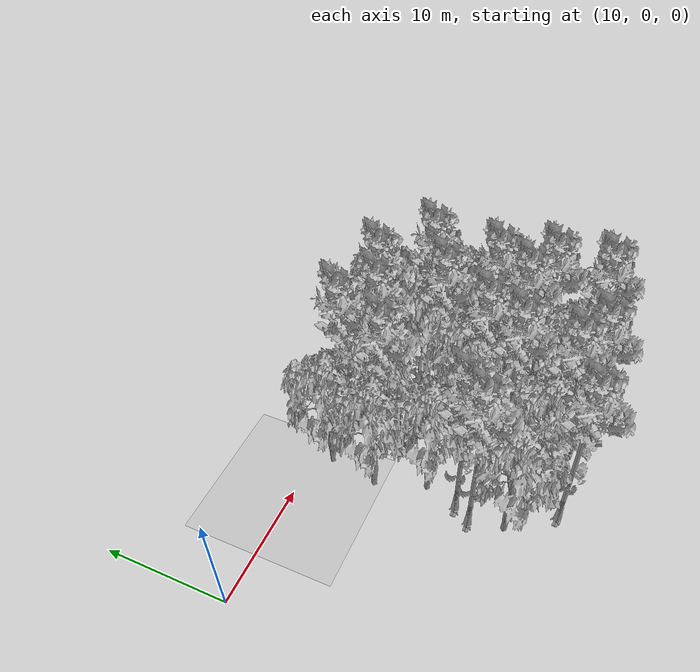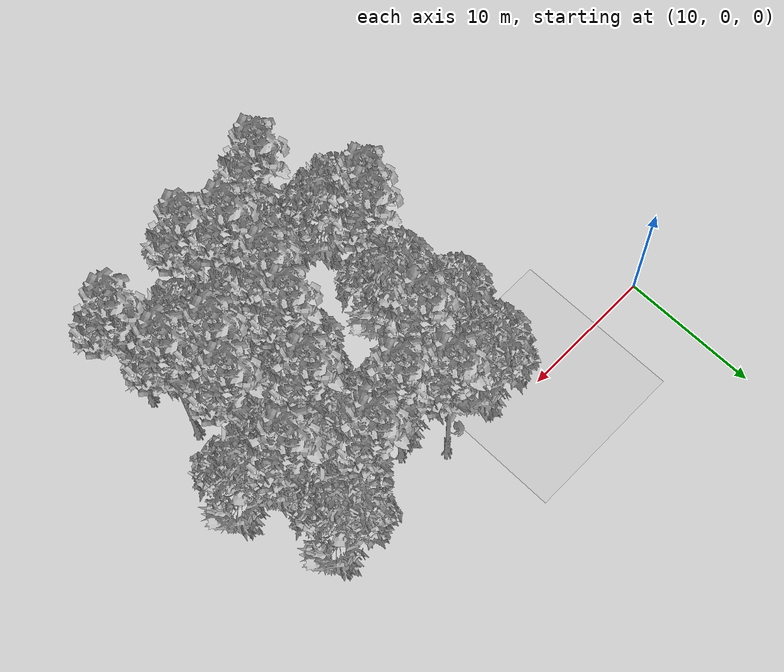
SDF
<sdf version="1.7">
 <world name="default">
  <model name="ground_plane">
   <static>1</static>
   <link name="link">
    <collision name="collision">
     <pose>20.0 0 0 0 -0 0</pose>
     <geometry><plane><normal>0 0 1</normal><size>40 40</size></plane></geometry>
     <surface><contact><ode><min_depth>0.01</min_depth><max_vel>0</max_vel></ode></contact></surface>
    </collision>
    <visual name="grass">
     <pose>20.0 0 0 0 -0 0</pose>
     <cast_shadows>0</cast_shadows>
     <geometry>
      <mesh>
       <scale>0.22052631578947368 0.22621621621621624 0.1</scale>
       <uri>model://grass_plane/meshes/grass_plane.dae</uri>
      </mesh>
     </geometry>
    </visual>
   </link>
  </model>
  <model name="Tree 6">
   <static>1</static>
   <pose>39.22942979063412 -6.585606838639464 0 1.57079 -0 0</pose>
   <link name="link">
    <collision name="collision">
     <geometry><mesh><scale>3.5 5 3.5</scale><uri>model://tree_2/meshes/tree_2.obj</uri></mesh></geometry>
    </collision>
    <visual name="visual">
     <geometry><mesh><scale>3.5 5 3.5</scale><uri>model://tree_2/meshes/tree_2.obj</uri></mesh></geometry>
    </visual>
   </link>
  </model>
  <model name="Tree 10">
   <static>1</static>
   <pose>36.91692979063412 -0.6596809127135401 0 1.57079 -0 0</pose>
   <link name="link">
    <collision name="collision">
     <geometry><mesh><scale>3.5 5 3.5</scale><uri>model://tree_2/meshes/tree_2.obj</uri></mesh></geometry>
    </collision>
    <visual name="visual">
     <geometry><mesh><scale>3.5 5 3.5</scale><uri>model://tree_2/meshes/tree_2.obj</uri></mesh></geometry>
    </visual>
   </link>
  </model>
  <model name="Tree 12">
   <static>1</static>
   <pose>32.29192979063412 -9.548569801602431 0 1.57079 -0 0</pose>
   <link name="link">
    <collision name="collision">
     <geometry><mesh><scale>3.5 5 3.5</scale><uri>model://tree_2/meshes/tree_2.obj</uri></mesh></geometry>
    </collision>
    <visual name="visual">
     <geometry><mesh><scale>3.5 5 3.5</scale><uri>model://tree_2/meshes/tree_2.obj</uri></mesh></geometry>
    </visual>
   </link>
  </model>
  <model name="Tree 18">
   <static>1</static>
   <pose>35.76067979063412 -12.51153276456539 0 1.57079 -0 0</pose>
   <link name="link">
    <collision name="collision">
     <geometry><mesh><scale>3.5 5 3.5</scale><uri>model://tree_9/meshes/tree_9.obj</uri></mesh></geometry>
    </collision>
    <visual name="visual">
     <geometry><mesh><scale>3.5 5 3.5</scale><uri>model://tree_9/meshes/tree_9.obj</uri></mesh></geometry>
    </visual>
   </link>
  </model>
  <model name="Tree 24">
   <static>1</static>
   <pose>28.82317979063412 -3.6226438756765056 0 1.57079 -0 0</pose>
   <link name="link">
    <collision name="collision">
     <geometry><mesh><scale>3.5 5 3.5</scale><uri>model://tree_2/meshes/tree_2.obj</uri></mesh></geometry>
    </collision>
    <visual name="visual">
     <geometry><mesh><scale>3.5 5 3.5</scale><uri>model://tree_2/meshes/tree_2.obj</uri></mesh></geometry>
    </visual>
   </link>
  </model>
  <model name="Tree 28">
   <static>1</static>
   <pose>33.44817979063412 -1.6473352337011988 0 1.57079 -0 0</pose>
   <link name="link">
    <collision name="collision">
     <geometry><mesh><scale>3.5 5 3.5</scale><uri>model://tree_9/meshes/tree_9.obj</uri></mesh></geometry>
    </collision>
    <visual name="visual">
     <geometry><mesh><scale>3.5 5 3.5</scale><uri>model://tree_9/meshes/tree_9.obj</uri></mesh></geometry>
    </visual>
   </link>
  </model>
  <model name="Tree 32">
   <static>1</static>
   <pose>25.93255479063412 -19.425113011478974 0 1.57079 -0 0</pose>
   <link name="link">
    <collision name="collision">
     <geometry><mesh><scale>3.5 5 3.5</scale><uri>model://tree_9/meshes/tree_9.obj</uri></mesh></geometry>
    </collision>
    <visual name="visual">
     <geometry><mesh><scale>3.5 5 3.5</scale><uri>model://tree_9/meshes/tree_9.obj</uri></mesh></geometry>
    </visual>
   </link>
  </model>
  <model name="Tree 36">
   <static>1</static>
   <pose>30.55755479063412 -13.499187085553048 0 1.57079 -0 0</pose>
   <link name="link">
    <collision name="collision">
     <geometry><mesh><scale>3.5 5 3.5</scale><uri>model://tree_9/meshes/tree_9.obj</uri></mesh></geometry>
    </collision>
    <visual name="visual">
     <geometry><mesh><scale>3.5 5 3.5</scale><uri>model://tree_9/meshes/tree_9.obj</uri></mesh></geometry>
    </visual>
   </link>
  </model>
  <model name="Tree 42">
   <static>1</static>
   <pose>37.49505479063412 -4.610298196664155 0 1.57079 -0 0</pose>
   <link name="link">
    <collision name="collision">
     <geometry><mesh><scale>3.5 5 3.5</scale><uri>model://tree_9/meshes/tree_9.obj</uri></mesh></geometry>
    </collision>
    <visual name="visual">
     <geometry><mesh><scale>3.5 5 3.5</scale><uri>model://tree_9/meshes/tree_9.obj</uri></mesh></geometry>
    </visual>
   </link>
  </model>
  <model name="Tree 45">
   <static>1</static>
   <pose>23.62005479063412 -12.017705604071569 0 1.57079 -0 0</pose>
   <link name="link">
    <collision name="collision">
     <geometry><mesh><scale>3.5 5 3.5</scale><uri>model://tree_9/meshes/tree_9.obj</uri></mesh></geometry>
    </collision>
    <visual name="visual">
     <geometry><mesh><scale>3.5 5 3.5</scale><uri>model://tree_9/meshes/tree_9.obj</uri></mesh></geometry>
    </visual>
   </link>
  </model>
  <model name="Tree 50">
   <static>1</static>
   <pose>36.33880479063412 -16.46215004851601 0 1.57079 -0 0</pose>
   <link name="link">
    <collision name="collision">
     <geometry><mesh><scale>3.5 5 3.5</scale><uri>model://tree_2/meshes/tree_2.obj</uri></mesh></geometry>
    </collision>
    <visual name="visual">
     <geometry><mesh><scale>3.5 5 3.5</scale><uri>model://tree_2/meshes/tree_2.obj</uri></mesh></geometry>
    </visual>
   </link>
  </model>
  <model name="Tree 60">
   <static>1</static>
   <pose>34.02630479063412 -5.597952517651805 0 1.57079 -0 0</pose>
   <link name="link">
    <collision name="collision">
     <geometry><mesh><scale>3.5 5 3.5</scale><uri>model://tree_2/meshes/tree_2.obj</uri></mesh></geometry>
    </collision>
    <visual name="visual">
     <geometry><mesh><scale>3.5 5 3.5</scale><uri>model://tree_2/meshes/tree_2.obj</uri></mesh></geometry>
    </visual>
   </link>
  </model>
  <model name="Tree 66">
   <static>1</static>
   <pose>34.89349229063412 -8.560915480614772 0 1.57079 -0 0</pose>
   <link name="link">
    <collision name="collision">
     <geometry><mesh><scale>3.5 5 3.5</scale><uri>model://tree_2/meshes/tree_2.obj</uri></mesh></geometry>
    </collision>
    <visual name="visual">
     <geometry><mesh><scale>3.5 5 3.5</scale><uri>model://tree_2/meshes/tree_2.obj</uri></mesh></geometry>
    </visual>
   </link>
  </model>
  <model name="Tree 68">
   <static>1</static>
   <pose>30.26849229063412 -17.449804369503667 0 1.57079 -0 0</pose>
   <link name="link">
    <collision name="collision">
     <geometry><mesh><scale>3.5 5 3.5</scale><uri>model://tree_9/meshes/tree_9.obj</uri></mesh></geometry>
    </collision>
    <visual name="visual">
     <geometry><mesh><scale>3.5 5 3.5</scale><uri>model://tree_9/meshes/tree_9.obj</uri></mesh></geometry>
    </visual>
   </link>
  </model>
  <model name="Tree 77">
   <static>1</static>
   <pose>23.33099229063412 -15.968322888022186 0 1.57079 -0 0</pose>
   <link name="link">
    <collision name="collision">
     <geometry><mesh><scale>3.5 5 3.5</scale><uri>model://tree_2/meshes/tree_2.obj</uri></mesh></geometry>
    </collision>
    <visual name="visual">
     <geometry><mesh><scale>3.5 5 3.5</scale><uri>model://tree_2/meshes/tree_2.obj</uri></mesh></geometry>
    </visual>
   </link>
  </model>
  <model name="Tree 84">
   <static>1</static>
   <pose>31.42474229063412 -10.865442229585973 0 1.57079 -0 0</pose>
   <link name="link">
    <collision name="collision">
     <geometry><mesh><scale>3.5 5 3.5</scale><uri>model://tree_9/meshes/tree_9.obj</uri></mesh></geometry>
    </collision>
    <visual name="visual">
     <geometry><mesh><scale>3.5 5 3.5</scale><uri>model://tree_9/meshes/tree_9.obj</uri></mesh></geometry>
    </visual>
   </link>
  </model>
  <model name="Tree 90">
   <static>1</static>
   <pose>38.36224229063412 -13.828405192548932 0 1.57079 -0 0</pose>
   <link name="link">
    <collision name="collision">
     <geometry><mesh><scale>3.5 5 3.5</scale><uri>model://tree_9/meshes/tree_9.obj</uri></mesh></geometry>
    </collision>
    <visual name="visual">
     <geometry><mesh><scale>3.5 5 3.5</scale><uri>model://tree_9/meshes/tree_9.obj</uri></mesh></geometry>
    </visual>
   </link>
  </model>
  <model name="Tree 93">
   <static>1</static>
   <pose>24.48724229063412 -9.383960748104485 0 1.57079 -0 0</pose>
   <link name="link">
    <collision name="collision">
     <geometry><mesh><scale>3.5 5 3.5</scale><uri>model://tree_2/meshes/tree_2.obj</uri></mesh></geometry>
    </collision>
    <visual name="visual">
     <geometry><mesh><scale>3.5 5 3.5</scale><uri>model://tree_2/meshes/tree_2.obj</uri></mesh></geometry>
    </visual>
   </link>
  </model>
  <model name="Tree 96">
   <static>1</static>
   <pose>26.22161729063412 -4.939516303660039 0 1.57079 -0 0</pose>
   <link name="link">
    <collision name="collision">
     <geometry><mesh><scale>3.5 5 3.5</scale><uri>model://tree_9/meshes/tree_9.obj</uri></mesh></geometry>
    </collision>
    <visual name="visual">
     <geometry><mesh><scale>3.5 5 3.5</scale><uri>model://tree_9/meshes/tree_9.obj</uri></mesh></geometry>
    </visual>
   </link>
  </model>
  <model name="Tree 104">
   <static>1</static>
   <pose>28.53411729063412 -16.79136815551189 0 1.57079 -0 0</pose>
   <link name="link">
    <collision name="collision">
     <geometry><mesh><scale>3.5 5 3.5</scale><uri>model://tree_2/meshes/tree_2.obj</uri></mesh></geometry>
    </collision>
    <visual name="visual">
     <geometry><mesh><scale>3.5 5 3.5</scale><uri>model://tree_2/meshes/tree_2.obj</uri></mesh></geometry>
    </visual>
   </link>
  </model>
  <model name="Tree 108">
   <static>1</static>
   <pose>33.15911729063412 -14.81605951353659 0 1.57079 -0 0</pose>
   <link name="link">
    <collision name="collision">
     <geometry><mesh><scale>3.5 5 3.5</scale><uri>model://tree_2/meshes/tree_2.obj</uri></mesh></geometry>
    </collision>
    <visual name="visual">
     <geometry><mesh><scale>3.5 5 3.5</scale><uri>model://tree_2/meshes/tree_2.obj</uri></mesh></geometry>
    </visual>
   </link>
  </model>
  <model name="Tree 109">
   <static>1</static>
   <pose>23.90911729063412 -1.482726180203251 0 1.57079 -0 0</pose>
   <link name="link">
    <collision name="collision">
     <geometry><mesh><scale>3.5 5 3.5</scale><uri>model://tree_2/meshes/tree_2.obj</uri></mesh></geometry>
    </collision>
    <visual name="visual">
     <geometry><mesh><scale>3.5 5 3.5</scale><uri>model://tree_2/meshes/tree_2.obj</uri></mesh></geometry>
    </visual>
   </link>
  </model>
  <model name="Tree 114">
   <static>1</static>
   <pose>36.62786729063412 -5.927170624647697 0 1.57079 -0 0</pose>
   <link name="link">
    <collision name="collision">
     <geometry><mesh><scale>3.5 5 3.5</scale><uri>model://tree_2/meshes/tree_2.obj</uri></mesh></geometry>
    </collision>
    <visual name="visual">
     <geometry><mesh><scale>3.5 5 3.5</scale><uri>model://tree_2/meshes/tree_2.obj</uri></mesh></geometry>
    </visual>
   </link>
  </model>
  <model name="Tree 117">
   <static>1</static>
   <pose>22.75286729063412 -13.334578032055102 0 1.57079 -0 0</pose>
   <link name="link">
    <collision name="collision">
     <geometry><mesh><scale>3.5 5 3.5</scale><uri>model://tree_9/meshes/tree_9.obj</uri></mesh></geometry>
    </collision>
    <visual name="visual">
     <geometry><mesh><scale>3.5 5 3.5</scale><uri>model://tree_9/meshes/tree_9.obj</uri></mesh></geometry>
    </visual>
   </link>
  </model>
  <model name="Tree 122">
   <static>1</static>
   <pose>38.94036729063412 -17.77902247649955 0 1.57079 -0 0</pose>
   <link name="link">
    <collision name="collision">
     <geometry><mesh><scale>3.5 5 3.5</scale><uri>model://tree_9/meshes/tree_9.obj</uri></mesh></geometry>
    </collision>
    <visual name="visual">
     <geometry><mesh><scale>3.5 5 3.5</scale><uri>model://tree_9/meshes/tree_9.obj</uri></mesh></geometry>
    </visual>
   </link>
  </model>
  <model name="Tree 132">
   <static>1</static>
   <pose>30.12396104063412 -2.964207661684739 0 1.57079 -0 0</pose>
   <link name="link">
    <collision name="collision">
     <geometry><mesh><scale>3.5 5 3.5</scale><uri>model://tree_9/meshes/tree_9.obj</uri></mesh></geometry>
    </collision>
    <visual name="visual">
     <geometry><mesh><scale>3.5 5 3.5</scale><uri>model://tree_9/meshes/tree_9.obj</uri></mesh></geometry>
    </visual>
   </link>
  </model>
  <model name="Tree 136">
   <static>1</static>
   <pose>27.81146104063412 -0.9888990197094216 0 1.57079 -0 0</pose>
   <link name="link">
    <collision name="collision">
     <geometry><mesh><scale>3.5 5 3.5</scale><uri>model://tree_9/meshes/tree_9.obj</uri></mesh></geometry>
    </collision>
    <visual name="visual">
     <geometry><mesh><scale>3.5 5 3.5</scale><uri>model://tree_9/meshes/tree_9.obj</uri></mesh></geometry>
    </visual>
   </link>
  </model>
  <model name="Tree 138">
   <static>1</static>
   <pose>37.06146104063412 -9.877787908598314 0 1.57079 -0 0</pose>
   <link name="link">
    <collision name="collision">
     <geometry><mesh><scale>3.5 5 3.5</scale><uri>model://tree_9/meshes/tree_9.obj</uri></mesh></geometry>
    </collision>
    <visual name="visual">
     <geometry><mesh><scale>3.5 5 3.5</scale><uri>model://tree_9/meshes/tree_9.obj</uri></mesh></geometry>
    </visual>
   </link>
  </model>
  <model name="Tree 140">
   <static>1</static>
   <pose>32.43646104063412 -18.766676797487207 0 1.57079 -0 0</pose>
   <link name="link">
    <collision name="collision">
     <geometry><mesh><scale>3.5 5 3.5</scale><uri>model://tree_9/meshes/tree_9.obj</uri></mesh></geometry>
    </collision>
    <visual name="visual">
     <geometry><mesh><scale>3.5 5 3.5</scale><uri>model://tree_9/meshes/tree_9.obj</uri></mesh></geometry>
    </visual>
   </link>
  </model>
  <model name="Tree 141">
   <static>1</static>
   <pose>23.18646104063412 -5.433343464153868 0 1.57079 -0 0</pose>
   <link name="link">
    <collision name="collision">
     <geometry><mesh><scale>3.5 5 3.5</scale><uri>model://tree_2/meshes/tree_2.obj</uri></mesh></geometry>
    </collision>
    <visual name="visual">
     <geometry><mesh><scale>3.5 5 3.5</scale><uri>model://tree_2/meshes/tree_2.obj</uri></mesh></geometry>
    </visual>
   </link>
  </model>
  <model name="Tree 156">
   <static>1</static>
   <pose>33.59271104063412 -6.914824945635356 0 1.57079 -0 0</pose>
   <link name="link">
    <collision name="collision">
     <geometry><mesh><scale>3.5 5 3.5</scale><uri>model://tree_9/meshes/tree_9.obj</uri></mesh></geometry>
    </collision>
    <visual name="visual">
     <geometry><mesh><scale>3.5 5 3.5</scale><uri>model://tree_9/meshes/tree_9.obj</uri></mesh></geometry>
    </visual>
   </link>
  </model>
 </world>
</sdf>
